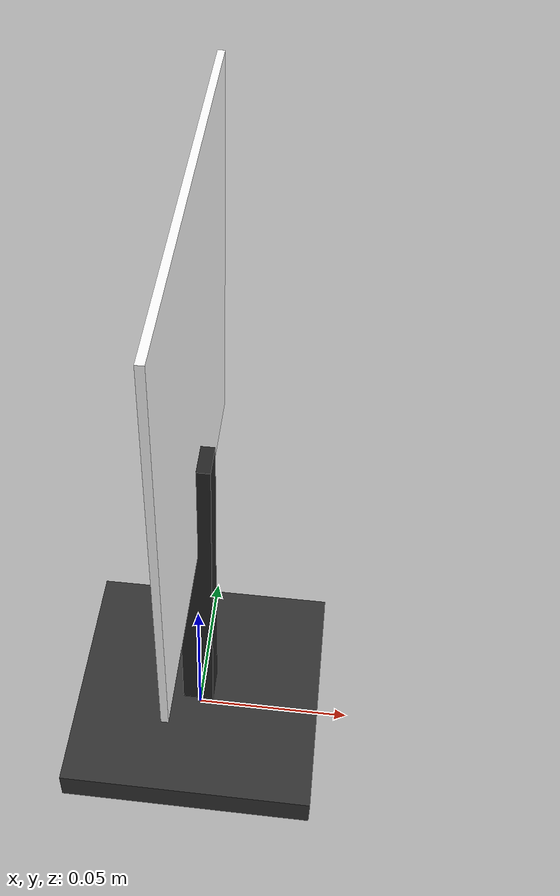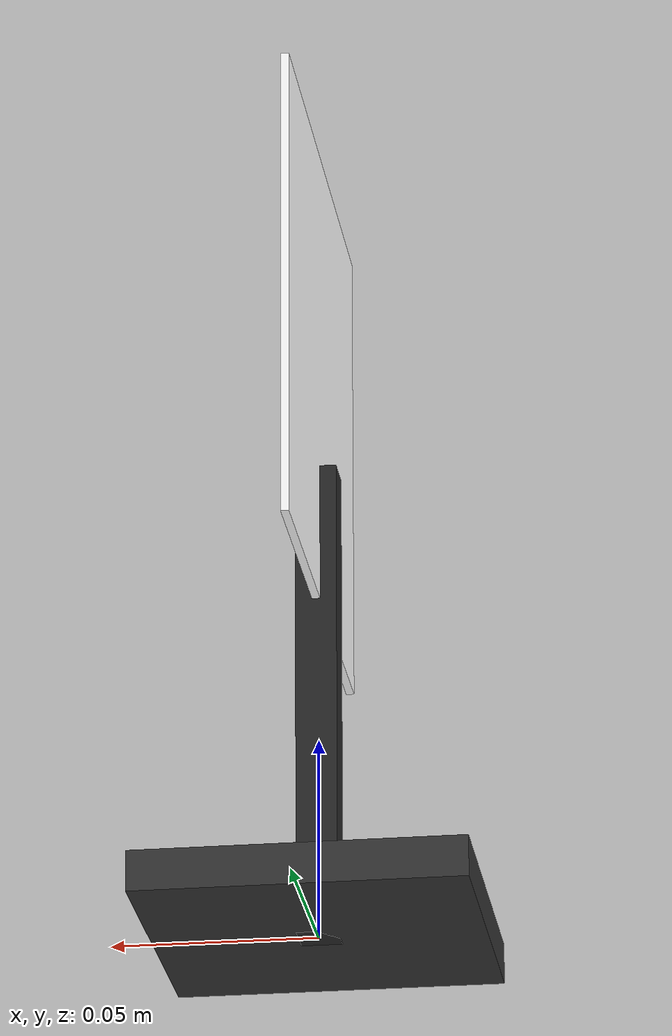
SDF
<?xml version="1.0"?>
<sdf version="1.10">
  <model name="aruco_marker_1">
    <static>true</static>
    <link name="marker_link">
      <collision name="base_collision">
        <pose>0 0 0.005 0 0 0</pose>
        <geometry>
          <box>
            <size>0.08 0.08 0.01</size>
          </box>
        </geometry>
      </collision>

      <collision name="pole_collision">
        <pose>0 0 0.06 0 0 0</pose>
        <geometry>
          <box>
            <size>0.01 0.01 0.12</size>
          </box>
        </geometry>
      </collision>

      <collision name="board_collision">
        <pose>0 0 0.145 0 0 0</pose>
        <geometry>
          <box>
            <size>0.002 0.12 0.12</size>
          </box>
        </geometry>
      </collision>

      <visual name="base_visual">
        <pose>0 0 0.005 0 0 0</pose>
        <geometry>
          <box>
            <size>0.08 0.08 0.01</size>
          </box>
        </geometry>
        <material>
          <ambient>0.2 0.2 0.2 1</ambient>
          <diffuse>0.2 0.2 0.2 1</diffuse>
        </material>
      </visual>

      <visual name="pole_visual">
        <pose>0 0 0.06 0 0 0</pose>
        <geometry>
          <box>
            <size>0.01 0.01 0.12</size>
          </box>
        </geometry>
        <material>
          <ambient>0.15 0.15 0.15 1</ambient>
          <diffuse>0.15 0.15 0.15 1</diffuse>
        </material>
      </visual>

      <visual name="board_visual">
        <pose>0 0 0.145 0 0 0</pose>
        <geometry>
          <box>
            <size>0.002 0.12 0.12</size>
          </box>
        </geometry>
        <material>
          <ambient>1 1 1 1</ambient>
          <diffuse>1 1 1 1</diffuse>
          <specular>0.02 0.02 0.02 1</specular>
          <pbr>
            <metal>
              <albedo_map>model://models/aruco_marker_1/materials/textures/aruco_1.png</albedo_map>
              <roughness>0.9</roughness>
              <metalness>0.0</metalness>
            </metal>
          </pbr>
        </material>
      </visual>
    </link>
  </model>
</sdf>
